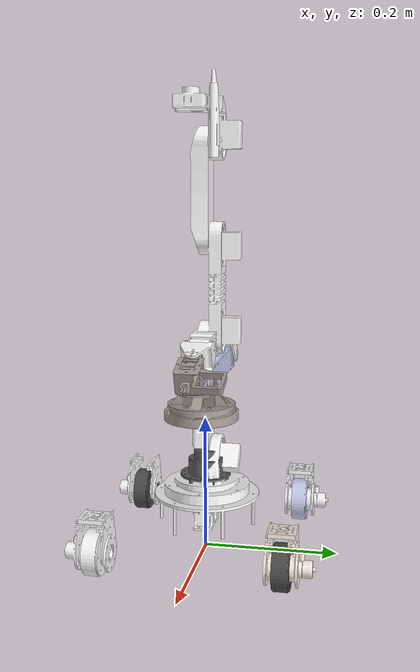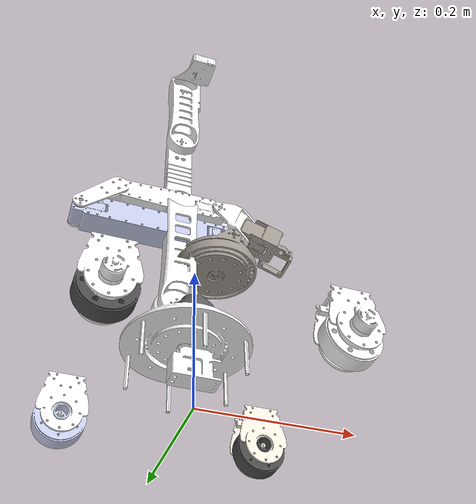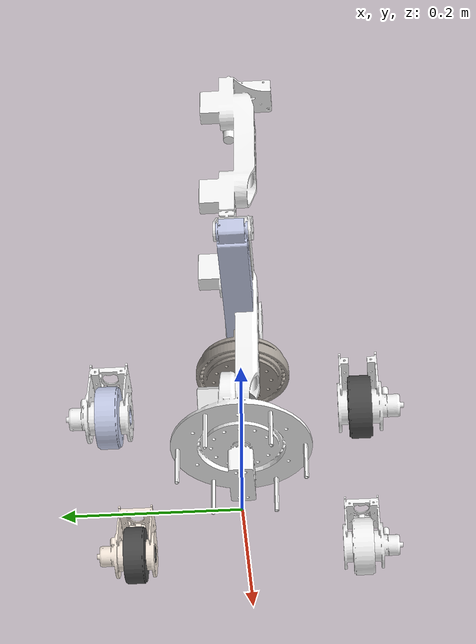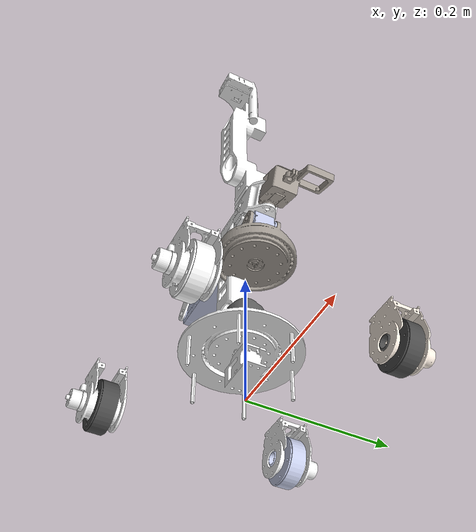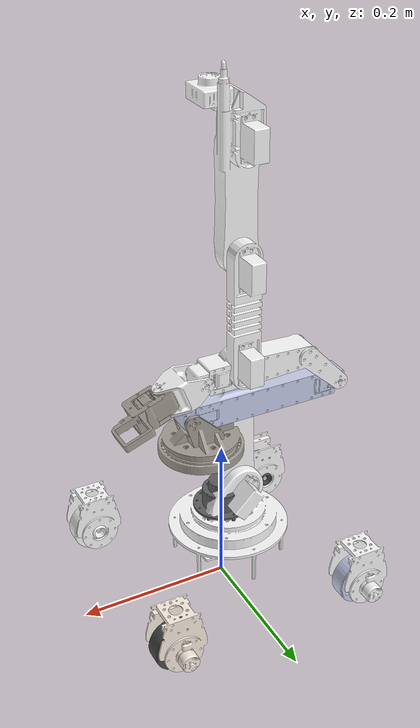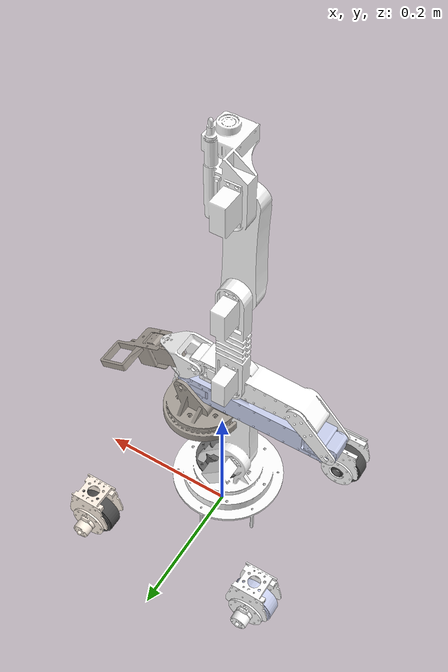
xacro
<?xml version="1.0" encoding="utf-8"?>
<robot name="robot_description"
  xmlns:xacro="http://www.ros.org/wiki/xacro">

  <!-- Robot Footprint -->
  <link name="base_footprint"/>

  <joint name="base_joint" type="fixed">
    <parent link="base_footprint"/>
    <child link="base_link"/>
    <origin xyz="0.0 0.0 0.033" rpy="0 0 0"/>
  </joint>

  <!-- base link -->
  <link name="base_link">
    <inertial>
      <origin xyz="-0.00905791507473457 -0.000488795930540497 0.0640826076248514" rpy="0 0 0"/>
      <mass value="3.02079030126272"/>
      <inertia ixx="0.0047459102901528" ixy="3.51756586633145E-06" ixz="9.25187553131626E-07" iyy="0.00495134636228368" iyz="-1.11927483956347E-07" izz="0.00929793533778467"/>
    </inertial>
    <visual>
      <origin xyz="0 0 0" rpy="0 0 0"/>
      <geometry>
        <mesh filename="$(find robot_description)/meshes/base_link.STL"/>
      </geometry>
      <material name="">
        <color rgba="1 1 1 1"/>
      </material>
    </visual>
    <collision>
      <origin xyz="0 0 0" rpy="0 0 0"/>
      <geometry>
        <mesh filename="$(find robot_description)/meshes/base_link.STL"/>
      </geometry>
    </collision>
  </link>

  <!-- laser link -->
  <link name="laser">
    <inertial>
      <origin xyz="-3.28944182967072E-09 -2.79918769626876E-09 -0.034597418415799" rpy="0 0 0"/>
      <mass value="0.0197577859576288"/>
      <inertia ixx="4.82189534964696E-06" ixy="2.48436928325093E-14" ixz="2.38955057703625E-14" iyy="4.82189520756809E-06" iyz="2.28917153671191E-15" izz="9.36232732215207E-06"/>
    </inertial>
    <visual>
      <origin xyz="0 0 0" rpy="0 0 0"/>
      <geometry>
        <mesh filename="$(find robot_description)/meshes/laser_frame.STL"/>
      </geometry>
      <material name="">
        <color rgba="0.376470588235294 0.376470588235294 0.376470588235294 1"/>
      </material>
    </visual>
    <collision>
      <origin xyz="0 0 0" rpy="0 0 0"/>
      <geometry>
        <mesh filename="$(find robot_description)/meshes/laser_frame.STL"/>
      </geometry>
    </collision>
  </link>

  <!-- laser joint -->
  <joint name="laser_joint" type="fixed">
    <origin xyz="-0.000482541160108889 0 0.111874126705049" rpy="0 0 0"/>
    <parent link="base_link"/>
    <child link="laser"/>
    <axis xyz="0 0 0"/>
  </joint>

  <!-- arm0_link -->
  <link name="arm0_Link">
    <inertial>
      <origin xyz="5.27093519414809E-05 2.44954880894475E-05 0.0113815325455051" rpy="0 0 0"/>
      <mass value="0.469376261813121"/>
      <inertia ixx="0.000439903649212175" ixy="6.19012321653416E-08" ixz="-2.10717922407623E-06" iyy="0.000442080302381582" iyz="-3.85248785977126E-11" izz="0.000856561950617975"/>
    </inertial>
    <visual>
      <origin xyz="0 0 0" rpy="0 0 0"/>
      <geometry>
        <mesh filename="$(find robot_description)/meshes/arm0_Link.STL"/>
      </geometry>
      <material name="">
        <color rgba="0.647058823529412 0.619607843137255 0.588235294117647 1"/>
      </material>
    </visual>
    <collision>
      <origin xyz="0 0 0" rpy="0 0 0"/>
      <geometry>
        <mesh filename="$(find robot_description)/meshes/arm0_Link.STL"/>
      </geometry>
    </collision>
  </link>

  <!-- arm0 joint -->
  <joint name="arm0" type="continuous">
    <origin xyz="0.0295174588398881 0 0.173124126705049" rpy="0 0 0"/>
    <parent link="base_link"/>
    <child link="arm0_Link"/>
    <axis xyz="0 0 1"/>
  </joint>

  <!-- arm1_link -->
  <link name="arm1_Link">
    <inertial>
      <origin xyz="-0.105007518584986 0.00141630130598419 0.0187999942153139" rpy="0 0 0"/>
      <mass value="0.1905874165244"/>
      <inertia ixx="4.18380122418888E-05" ixy="-8.77952273477526E-06" ixz="-1.03900484165303E-08" iyy="0.000406432980248108" iyz="1.47794609107449E-11" izz="0.000424002018340545"/>
    </inertial>
    <visual>
      <origin xyz="0 0 0" rpy="0 0 0"/>
      <geometry>
        <mesh filename="$(find robot_description)/meshes/arm1_Link.STL"/>
      </geometry>
      <material name="">
        <color rgba="0.792156862745098 0.819607843137255 0.933333333333333 1"/>
      </material>
    </visual>
    <collision>
      <origin xyz="0 0 0" rpy="0 0 0"/>
      <geometry>
        <mesh filename="$(find robot_description)/meshes/arm1_Link.STL"/>
      </geometry>
    </collision>
  </link>

  <!-- arm1 joint -->
  <joint name="arm1" type="revolute">
    <origin xyz="0.02 0.0183 0.0595" rpy="1.5708 0 0"/>
    <parent link="arm0_Link"/>
    <child link="arm1_Link"/>
    <axis xyz="0 0 1"/>
    <limit lower="-210" upper="0" effort="1" velocity="3"/>
  </joint>

  <!-- arm2_link -->
  <link name="arm2_Link">
    <inertial>
      <origin xyz="0.100452932197325 0.0447481861533194 -0.0181893769189027" rpy="0 0 0"/>
      <mass value="0.164248712945774"/>
      <inertia ixx="3.52887905356114E-05" ixy="-2.00181663560874E-05" ixz="5.21115865733209E-09" iyy="0.00029554091042407" iyz="-3.44733343118317E-10" izz="0.000308884693204529"/>
    </inertial>
    <visual>
      <origin xyz="0 0 0" rpy="0 0 0"/>
      <geometry>
        <mesh filename="$(find robot_description)/meshes/arm2_Link.STL"/>
      </geometry>
      <material name="">
        <color rgba="1 1 1 1"/>
      </material>
    </visual>
    <collision>
      <origin xyz="0 0 0" rpy="0 0 0"/>
      <geometry>
        <mesh filename="$(find robot_description)/meshes/arm2_Link.STL"/>
      </geometry>
    </collision>
  </link>

  <!-- arm2 joint -->
  <joint name="arm2" type="revolute">
    <origin xyz="-0.214299994813131 0 0.0376000028997485" rpy="0 0 0"/>
    <parent link="arm1_Link"/>
    <child link="arm2_Link"/>
    <axis xyz="0 0 -1"/>
    <limit lower="0" upper="270" effort="1" velocity="3"/>
  </joint>

  <!-- arm3_link -->
  <link name="arm3_Link">
    <inertial>
      <origin xyz="0.0244536421910909 -0.0093611713162593 -0.0184330992425119" rpy="0 0 0"/>
      <mass value="0.0312238812156817"/>
      <inertia ixx="1.2997419944031E-05" ixy="-6.86664871709515E-07" ixz="-9.49084586365268E-09" iyy="1.14173396064683E-05" iyz="4.27514678311462E-09" izz="1.1219689644564E-05"/>
    </inertial>
    <visual>
      <origin xyz="0 0 0" rpy="0 0 0"/>
      <geometry>
        <mesh filename="$(find robot_description)/meshes/arm3_Link.STL"/>
      </geometry>
      <material name="">
        <color rgba="1 1 1 1"/>
      </material>
    </visual>
    <collision>
      <origin xyz="0 0 0" rpy="0 0 0"/>
      <geometry>
        <mesh filename="$(find robot_description)/meshes/arm3_Link.STL"/>
      </geometry>
    </collision>
  </link>

  <!-- arm3 joint -->
  <joint name="arm3" type="revolute">
    <origin xyz="0.195198405547995 0.0479983915101106 0.000499985962073995" rpy="0.00872697851439958 -0.00872598171315928 -7.61524215215586E-05"/>
    <parent link="arm2_Link"/>
    <child link="arm3_Link"/>
    <axis xyz="-0.00872587097686232 -0.00872653549837341 -0.99992385047757"/>
    <limit lower="0" upper="100" effort="1" velocity="3"/>
  </joint>

  <!-- arm4_link -->
  <link name="arm4_Link">
    <inertial>
      <origin xyz="0.0347390678915086 -0.00413801569158295 -0.0209305905705711" rpy="0 0 0"/>
      <mass value="0.0522475609584348"/>
      <inertia ixx="1.36823938394385E-05" ixy="2.66574817985518E-06" ixz="8.39394854007867E-07" iyy="9.79309028256577E-06" iyz="-1.69593151918628E-06" izz="1.75606392336261E-05"/>
    </inertial>
    <visual>
      <origin xyz="0 0 0" rpy="0 0 0"/>
      <geometry>
        <mesh filename="$(find robot_description)/meshes/arm4_Link.STL"/>
      </geometry>
      <material name="">
        <color rgba="0.650980392156863 0.619607843137255 0.588235294117647 1"/>
      </material>
    </visual>
    <collision>
      <origin xyz="0 0 0" rpy="0 0 0"/>
      <geometry>
        <mesh filename="$(find robot_description)/meshes/arm4_Link.STL"/>
      </geometry>
    </collision>
  </link>

  <!-- arm4 joint -->
  <joint name="arm4" type="revolute">
    <origin xyz="0.0398926340613602 -0.0346685199789408 -0.0183469477877459" rpy="1.56824861064815 0.00509594419856987 -0.366478515653153"/>
    <parent link="arm3_Link"/>
    <child link="arm4_Link"/>
    <axis xyz="-0.00872587097688493 -0.00872653523448956 -0.999923850479873"/>
    <limit lower="-90" upper="90" effort="1" velocity="3"/>
  </joint>

  <!-- LFs link (左前 steering) -->
  <link name="LFs_Link">
    <inertial>
      <origin xyz="-3.43181859924213E-06 0.00109461595355642 -0.0424747271155292" rpy="0 0 0"/>
      <mass value="0.114715980836134"/>
      <inertia ixx="1.43428504844199E-05" ixy="1.07530266321773E-11" ixz="3.39986697862229E-12" iyy="2.96038470108407E-05" iyz="2.80051423962253E-10" izz="2.00828947865518E-05"/>
    </inertial>
    <visual>
      <origin xyz="0 0 0" rpy="0 0 0"/>
      <geometry>
        <mesh filename="$(find robot_description)/meshes/LFs_Link.STL"/>
      </geometry>
      <material name="">
        <color rgba="1 0.949019607843137 0.898039215686275 1"/>
      </material>
    </visual>
    <collision>
      <origin xyz="0 0 0" rpy="0 0 0"/>
      <geometry>
        <mesh filename="$(find robot_description)/meshes/LFs_Link.STL"/>
      </geometry>
    </collision>
  </link>

  <!-- LFs joint -->
  <joint name="LFs" type="continuous">
    <origin xyz="0.13238 0.13286 0.055124" rpy="0 0 0"/>
    <parent link="base_link"/>
    <child link="LFs_Link"/>
    <axis xyz="0 0 1"/>
  </joint>

  <!-- LFd link (左前 drive) -->
  <link name="LFd_Link">
    <inertial>
      <origin xyz="-1.03712429144753E-06 -4.22896943690254E-05 -0.0180040579132936" rpy="0 0 0"/>
      <mass value="0.0555886189628006"/>
      <inertia ixx="2.17656627943887E-05" ixy="1.87563768432862E-16" ixz="8.87301353584558E-17" iyy="2.17656627947915E-05" iyz="1.05868514442875E-16" izz="3.98658756411664E-05"/>
    </inertial>
    <visual>
      <origin xyz="0 0 0" rpy="0 0 0"/>
      <geometry>
        <mesh filename="$(find robot_description)/meshes/LFd_Link.STL"/>
      </geometry>
      <material name="">
        <color rgba="0.298039215686275 0.298039215686275 0.298039215686275 1"/>
      </material>
    </visual>
    <collision>
      <origin xyz="0 0 0" rpy="0 0 0"/>
      <geometry>
        <mesh filename="$(find robot_description)/meshes/LFd_Link.STL"/>
      </geometry>
    </collision>
  </link>

  <!-- LFd joint -->
  <joint name="LFd" type="continuous">
    <origin xyz="0 -0.0192000070641395 -0.0549577103053597" rpy="1.5707963267949 0 0"/>
    <parent link="LFs_Link"/>
    <child link="LFd_Link"/>
    <axis xyz="0 0 -1"/>
  </joint>

  <!-- LRs link (左后 steering) -->
  <link name="LRs_Link">
    <inertial>
      <origin xyz="-3.45773536702954E-06 0.00109460811387849 -0.0424747271155197" rpy="0 0 0"/>
      <mass value="0.114715980835521"/>
      <inertia ixx="1.43428504843719E-05" ixy="1.07530264428732E-11" ixz="3.39986454052669E-12" iyy="2.96038470107929E-05" iyz="2.80051427479846E-10" izz="2.00828947865514E-05"/>
    </inertial>
    <visual>
      <origin xyz="0 0 0" rpy="0 0 0"/>
      <geometry>
        <mesh filename="$(find robot_description)/meshes/LRs_Link.STL"/>
      </geometry>
      <material name="">
        <color rgba="1 1 1 1"/>
      </material>
    </visual>
    <collision>
      <origin xyz="0 0 0" rpy="0 0 0"/>
      <geometry>
        <mesh filename="$(find robot_description)/meshes/LRs_Link.STL"/>
      </geometry>
    </collision>
  </link>

  <!-- LRs joint -->
  <joint name="LRs" type="continuous">
    <origin xyz="-0.13335 0.13286 0.055124" rpy="0 0 0"/>
    <parent link="base_link"/>
    <child link="LRs_Link"/>
    <axis xyz="0 0 1"/>
  </joint>

  <!-- LRd link (左后 drive) -->
  <link name="LRd_Link">
    <inertial>
      <origin xyz="-1.05702918615225E-06 -4.22896946395625E-05 -0.0180040579107741" rpy="0 0 0"/>
      <mass value="0.0555886189628006"/>
      <inertia ixx="2.17656627948538E-05" ixy="-7.90717223889219E-17" ixz="9.89661937500372E-17" iyy="2.17656627943267E-05" iyz="-8.71922434634148E-18" izz="3.98658756411665E-05"/>
    </inertial>
    <visual>
      <origin xyz="0 0 0" rpy="0 0 0"/>
      <geometry>
        <mesh filename="$(find robot_description)/meshes/LRd_Link.STL"/>
      </geometry>
      <material name="">
        <color rgba="0.796078431372549 0.823529411764706 0.937254901960784 1"/>
      </material>
    </visual>
    <collision>
      <origin xyz="0 0 0" rpy="0 0 0"/>
      <geometry>
        <mesh filename="$(find robot_description)/meshes/LRd_Link.STL"/>
      </geometry>
    </collision>
  </link>

  <!-- LRd joint -->
  <joint name="LRd" type="continuous">
    <origin xyz="0 -0.0192000149011577 -0.0549577103053588" rpy="1.5707963267949 0 0"/>
    <parent link="LRs_Link"/>
    <child link="LRd_Link"/>
    <axis xyz="0 0 -1"/>
  </joint>

  <!-- RFs link (右前 steering) -->
  <link name="RFs_Link">
    <inertial>
      <origin xyz="3.44283421241376E-06 -0.00109462301503799 -0.0424747271155221" rpy="0 0 0"/>
      <mass value="0.114715980835538"/>
      <inertia ixx="1.43428504843731E-05" ixy="1.07530264536241E-11" ixz="-3.39986462854254E-12" iyy="2.96038470107942E-05" iyz="-2.80051427386621E-10" izz="2.00828947865514E-05"/>
    </inertial>
    <visual>
      <origin xyz="0 0 0" rpy="0 0 0"/>
      <geometry>
        <mesh filename="$(find robot_description)/meshes/RFs_Link.STL"/>
      </geometry>
      <material name="">
        <color rgba="1 1 1 1"/>
      </material>
    </visual>
    <collision>
      <origin xyz="0 0 0" rpy="0 0 0"/>
      <geometry>
        <mesh filename="$(find robot_description)/meshes/RFs_Link.STL"/>
      </geometry>
    </collision>
  </link>

  <!-- RFs joint -->
  <joint name="RFs" type="continuous">
    <origin xyz="0.13238 -0.13286 0.055124" rpy="0 0 0"/>
    <parent link="base_link"/>
    <child link="RFs_Link"/>
    <axis xyz="0 0 1"/>
  </joint>

  <!-- RFd link (右前 drive) -->
  <link name="RFd_Link">
    <inertial>
      <origin xyz="1.05702960626064E-06 -4.22896943098171E-05 0.0180040579107738" rpy="0 0 0"/>
      <mass value="0.0555886189628007"/>
      <inertia ixx="2.17656627945638E-05" ixy="2.74003517078324E-16" ixz="-7.01209695758619E-17" iyy="2.17656627946164E-05" iyz="-1.23646991662953E-16" izz="3.98658756411663E-05"/>
    </inertial>
    <visual>
      <origin xyz="0 0 0" rpy="0 0 0"/>
      <geometry>
        <mesh filename="$(find robot_description)/meshes/RFd_Link.STL"/>
      </geometry>
      <material name="">
        <color rgba="1 1 1 1"/>
      </material>
    </visual>
    <collision>
      <origin xyz="0 0 0" rpy="0 0 0"/>
      <geometry>
        <mesh filename="$(find robot_description)/meshes/RFd_Link.STL"/>
      </geometry>
    </collision>
  </link>

  <!-- RFd joint -->
  <joint name="RFd" type="continuous">
    <origin xyz="0 0.0192000000000008 -0.0549577103053633" rpy="1.5707963267949 0 0"/>
    <parent link="RFs_Link"/>
    <child link="RFd_Link"/>
    <axis xyz="0 0 1"/>
  </joint>

  <!-- RRs_Link (右后 steering) -->
  <link name="RRs_Link">
    <inertial>
      <origin xyz="3.56441174925726E-06 -0.00113327767047011 -0.0438441812611075" rpy="0 0 0"/>
      <mass value="0.110803165091198"/>
      <inertia ixx="1.37587466407648E-05" ixy="1.07530264549324E-11" ixz="-3.39986463165107E-12" iyy="2.89883861963043E-05" iyz="-2.80051427336613E-10" izz="1.89090821817843E-05"/>
    </inertial>
    <visual>
      <origin xyz="0 0 0" rpy="0 0 0"/>
      <geometry>
        <mesh filename="$(find robot_description)/meshes/RRs_Link.STL"/>
      </geometry>
      <material name="">
        <color rgba="1 1 1 1"/>
      </material>
    </visual>
    <collision>
      <origin xyz="0 0 0" rpy="0 0 0"/>
      <geometry>
        <mesh filename="$(find robot_description)/meshes/RRs_Link.STL"/>
      </geometry>
    </collision>
  </link>

  <!-- RRs joint -->
  <joint name="RRs" type="continuous">
    <origin xyz="-0.133347475742118 -0.132864934582008 0.0551241267050491" rpy="0 0 0"/>
    <parent link="base_link"/>
    <child link="RRs_Link"/>
    <axis xyz="0 0 1"/>
  </joint>

  <!-- RRd_Link (右后 drive) -->
  <link name="RRd_Link">
    <inertial>
      <origin xyz="1.05702937763796E-06 -4.22896944295686E-05 0.0180040579107738" rpy="0 0 0"/>
      <mass value="0.0555886189628006"/>
      <inertia ixx="2.17656627943621E-05" ixy="-1.53737084532589E-16" ixz="2.70310359630393E-17" iyy="2.17656627948185E-05" iyz="-8.95623799269351E-17" izz="3.98658756411666E-05"/>
    </inertial>
    <visual>
      <origin xyz="0 0 0" rpy="0 0 0"/>
      <geometry>
        <mesh filename="$(find robot_description)/meshes/RRd_Link.STL"/>
      </geometry>
      <material name="">
        <color rgba="0.298039215686275 0.298039215686275 0.298039215686275 1"/>
      </material>
    </visual>
    <collision>
      <origin xyz="0 0 0" rpy="0 0 0"/>
      <geometry>
        <mesh filename="$(find robot_description)/meshes/RRd_Link.STL"/>
      </geometry>
    </collision>
  </link>

  <!-- RRd joint -->
  <joint name="RRd" type="continuous">
    <origin xyz="0 0.0192000000000007 -0.0549577103053587" rpy="1.5707963267949 0 0"/>
    <parent link="RRs_Link"/>
    <child link="RRd_Link"/>
    <axis xyz="0 0 1"/>
  </joint>

  <!-- ================================================================
       Gazebo Simulation Plugins
       ================================================================ -->

  <!-- ===== Collision Overrides (simplified geometry) ===== -->

  <gazebo reference="base_link">
    <collision>
      <geometry>
        <box>
          <size>0.6 0.5 0.25</size>
        </box>
      </geometry>
    </collision>
    <maxContacts>10</maxContacts>
  </gazebo>

  <gazebo reference="laser">
    <collision>
      <geometry>
        <box>
          <size>0.07 0.07 0.07</size>
        </box>
      </geometry>
    </collision>
  </gazebo>

  <!-- Steering links: LFs, LRs, RFs, RRs -->
  <gazebo reference="LFs_Link">
    <collision>
      <geometry>
        <cylinder>
          <radius>0.02</radius>
          <length>0.04</length>
        </cylinder>
      </geometry>
    </collision>
  </gazebo>

  <gazebo reference="LRs_Link">
    <collision>
      <geometry>
        <cylinder>
          <radius>0.02</radius>
          <length>0.04</length>
        </cylinder>
      </geometry>
    </collision>
  </gazebo>

  <gazebo reference="RFs_Link">
    <collision>
      <geometry>
        <cylinder>
          <radius>0.02</radius>
          <length>0.04</length>
        </cylinder>
      </geometry>
    </collision>
  </gazebo>

  <gazebo reference="RRs_Link">
    <collision>
      <geometry>
        <cylinder>
          <radius>0.02</radius>
          <length>0.04</length>
        </cylinder>
      </geometry>
    </collision>
  </gazebo>

  <!-- Drive links: LFd, LRd, RFd, RRd -->
  <gazebo reference="LFd_Link">
    <collision>
      <geometry>
        <cylinder>
          <radius>0.033</radius>
          <length>0.02</length>
        </cylinder>
      </geometry>
    </collision>
  </gazebo>

  <gazebo reference="LRd_Link">
    <collision>
      <geometry>
        <cylinder>
          <radius>0.033</radius>
          <length>0.02</length>
        </cylinder>
      </geometry>
    </collision>
  </gazebo>

  <gazebo reference="RFd_Link">
    <collision>
      <geometry>
        <cylinder>
          <radius>0.033</radius>
          <length>0.02</length>
        </cylinder>
      </geometry>
    </collision>
  </gazebo>

  <gazebo reference="RRd_Link">
    <collision>
      <geometry>
        <cylinder>
          <radius>0.033</radius>
          <length>0.02</length>
        </cylinder>
      </geometry>
    </collision>
  </gazebo>

  <!-- Arm links: disable collision (not simulated) -->
  <gazebo reference="arm0_Link">
    <collision>
      <geometry>
        <box>
          <size>0.01 0.01 0.01</size>
        </box>
      </geometry>
    </collision>
  </gazebo>

  <gazebo reference="arm1_Link">
    <collision>
      <geometry>
        <box>
          <size>0.01 0.01 0.01</size>
        </box>
      </geometry>
    </collision>
  </gazebo>

  <gazebo reference="arm2_Link">
    <collision>
      <geometry>
        <box>
          <size>0.01 0.01 0.01</size>
        </box>
      </geometry>
    </collision>
  </gazebo>

  <gazebo reference="arm3_Link">
    <collision>
      <geometry>
        <box>
          <size>0.01 0.01 0.01</size>
        </box>
      </geometry>
    </collision>
  </gazebo>

  <gazebo reference="arm4_Link">
    <collision>
      <geometry>
        <box>
          <size>0.01 0.01 0.01</size>
        </box>
      </geometry>
    </collision>
  </gazebo>

  <!-- ===== Planar Move Plugin (cmd_vel → base motion + odom) ===== -->
  <gazebo>
    <plugin name="planar_move" filename="libgazebo_ros_planar_move.so">
      <ros>
        <namespace>/</namespace>
      </ros>
      <update_rate>100.0</update_rate>
      <publish_rate>30.0</publish_rate>
      <publish_odom>true</publish_odom>
      <publish_odom_tf>true</publish_odom_tf>
      <odometry_frame>odom</odometry_frame>
      <robot_base_frame>base_footprint</robot_base_frame>
    </plugin>
  </gazebo>

  <!-- ===== Joint State Publisher (→ /joint_states) ===== -->
  <gazebo>
    <plugin name="joint_state_publisher" filename="libgazebo_ros_joint_state_publisher.so">
      <ros>
        <namespace>/</namespace>
        <remapping>~/out:=joint_states</remapping>
      </ros>
      <update_rate>30</update_rate>
    </plugin>
  </gazebo>

  <!-- ===== 2D LiDAR Ray Sensor (→ /scan) ===== -->
  <gazebo reference="laser">
    <sensor type="ray" name="laser_sensor">
      <pose>0 0 0 0 0 0</pose>
      <visualize>false</visualize>
      <update_rate>10</update_rate>
      <ray>
        <scan>
          <horizontal>
            <samples>360</samples>
            <resolution>1</resolution>
            <min_angle>-3.14159</min_angle>
            <max_angle>3.14159</max_angle>
          </horizontal>
        </scan>
        <range>
          <min>0.15</min>
          <max>30.0</max>
        </range>
        <noise>
          <type>gaussian</type>
          <mean>0.0</mean>
          <stddev>0.01</stddev>
        </noise>
      </ray>
      <plugin name="laser_controller" filename="libgazebo_ros_ray_sensor.so">
        <ros>
          <namespace>/</namespace>
          <remapping>~/out:=scan</remapping>
        </ros>
        <output_type>sensor_msgs/LaserScan</output_type>
        <frame_name>laser</frame_name>
      </plugin>
    </sensor>
  </gazebo>

</robot>
